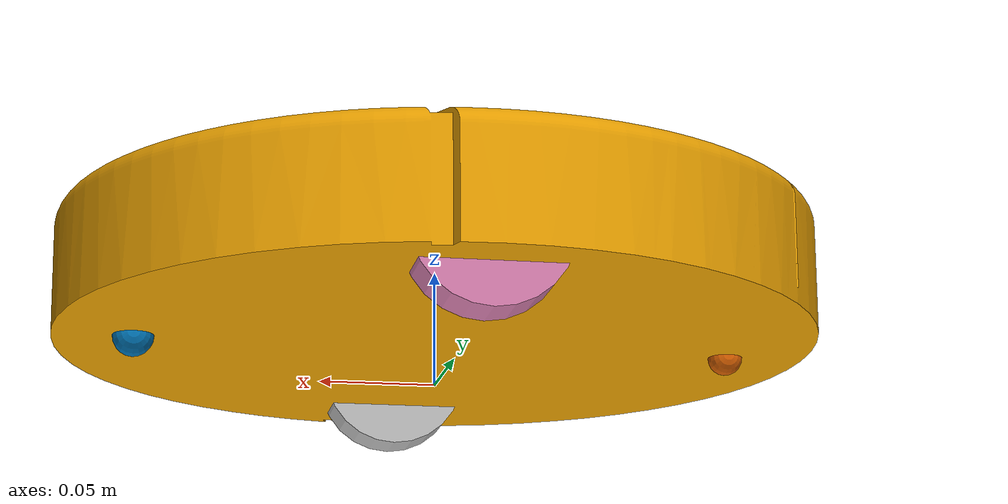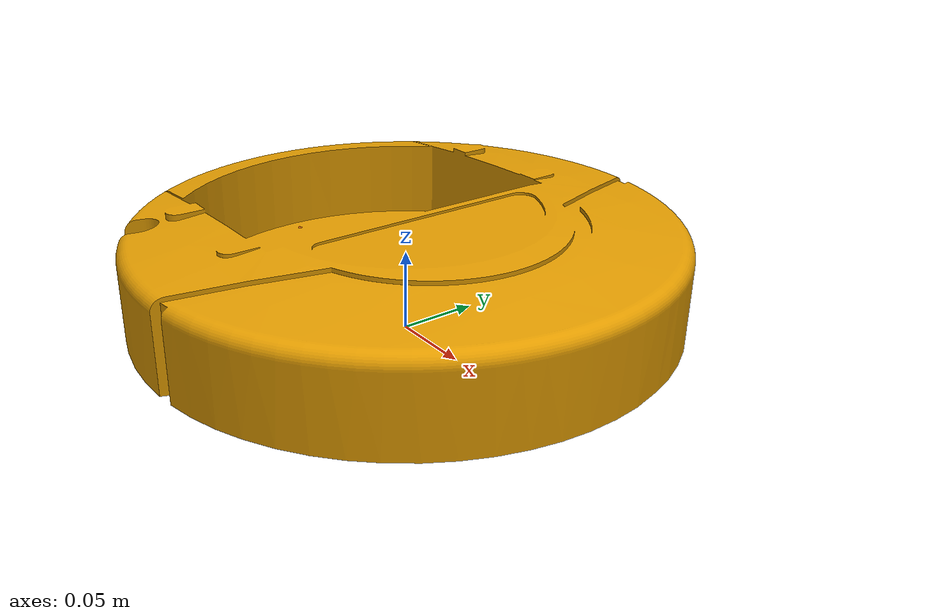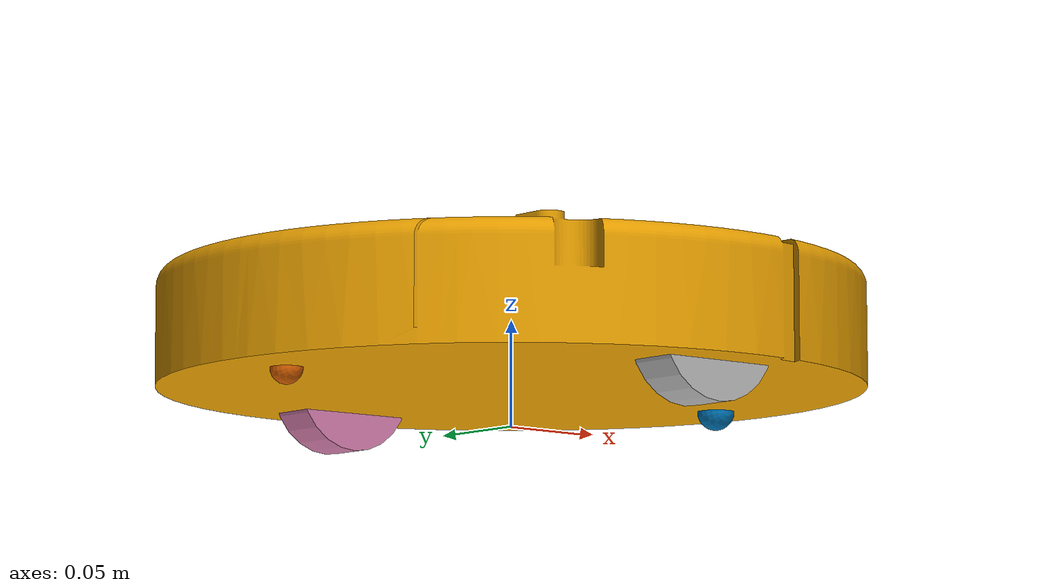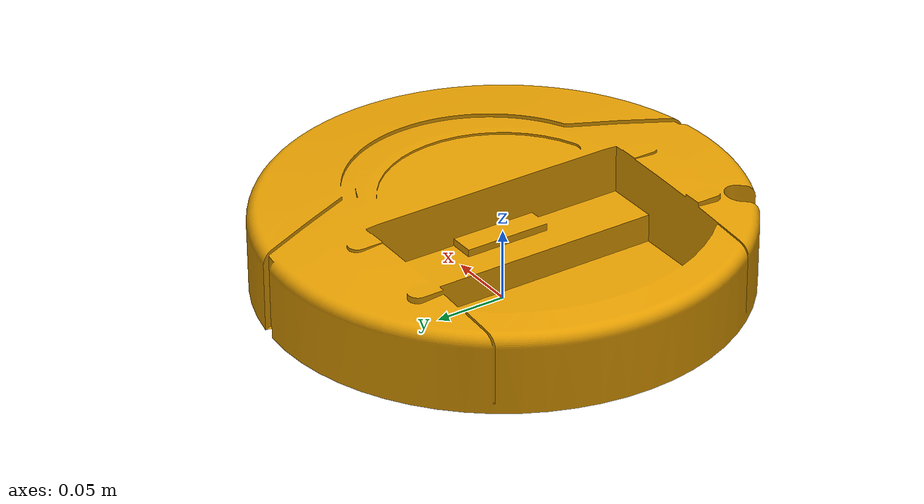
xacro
<?xml version="1.0" ?>
<robot name="vacuum_cleaner"
  xmlns:xacro="http://ros.org/wiki/xacro">

  <xacro:arg name="camera" default="true"/>
  <xacro:arg name="laser" default="false"/>
  <xacro:arg name="namespace" default="vacuum_cleaner"/>
  <xacro:property name="namespace" value="$(arg namespace)"/>

  <xacro:include filename="$(find custom_robots)/models/vacuum_cleaner/vacuum_cleaner_gz.urdf.xacro"/>
  <xacro:include filename="$(find custom_robots)/models/vacuum_cleaner/vacuum_cleaner_common.urdf.xacro"/>

  <xacro:vacuum_cleaner namespace="${namespace}"/>

  <xacro:if value="$(arg camera)">
    <xacro:camera xyz="0 0 0" rpy="0 -1.57 0" name="camera" parent="base" namespace="${namespace}"/>
  </xacro:if>

  <xacro:if value="$(arg laser)">
    <xacro:laser xyz="0.139 0 0.0752" rpy="0 0 0" name="laser" parent="base" namespace="${namespace}"/>
  </xacro:if>
</robot>

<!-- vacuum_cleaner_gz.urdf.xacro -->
<robot name="vacuum_cleaner_gz"
  xmlns:xacro="http://ros.org/wiki/xacro">
  <xacro:macro name="camera" params="xyz rpy name parent namespace">

    <link name="${name}_link"></link>

    <joint name="${name}_to_${parent}" type="fixed">
      <parent link="${parent}" />
      <child link="${name}_link" />
      <origin xyz="${xyz}" rpy="${rpy}" />
    </joint>

    <gazebo reference="${name}_link">
      <sensor name="${name}" type="camera">
        <always_on>true</always_on>
        <visualize>false</visualize>
        <update_rate>20</update_rate>
        <topic>/${namespace}/${name}/image_raw</topic>
        <camera name="camera">
          <camera_info_topic>/${namespace}/${name}/camera_info</camera_info_topic>
          <horizontal_fov>1.089</horizontal_fov>
          <distortion>
            <k1>0.0</k1>
            <k2>0.0</k2>
            <k3>0.0</k3>
            <p1>0.0</p1>
            <p2>0.0</p2>
            <center>0.5 0.5</center>
          </distortion>
          <image>
            <width>640</width>
            <height>480</height>
            <format>R8G8B8</format>
          </image>
          <clip>
            <near>0.05</near>
            <far>8.0</far>
          </clip>
          <noise>
            <type>gaussian</type>
            <mean>0.0</mean>
            <stddev>0.007</stddev>
          </noise>
        </camera>
      </sensor>
    </gazebo>
  </xacro:macro>

  <xacro:macro name="laser" params="xyz rpy name parent namespace">
    <link name="${name}_link">
      <visual>
        <geometry>
          <mesh filename="file://$(find custom_robots)/models/f1/meshes/hokuyo.dae"
            scale="0.1 0.1 0.1" />
        </geometry>
      </visual>
    </link>

    <joint name="${name}_to_${parent}" type="fixed">
      <parent link="${parent}" />
      <child link="${name}_link" />
      <origin xyz="${xyz}" rpy="${rpy}" />
    </joint>

    <gazebo reference="${name}_link">
      <sensor name="${name}" type="gpu_lidar">
        <always_on>1</always_on>
        <visualize>1</visualize>
        <update_rate>20</update_rate>
        <topic>/${namespace}/laser/scan</topic>
        <gz_frame_id>laser</gz_frame_id>
        <lidar>
          <scan>
            <horizontal>
              <samples>180</samples>
              <resolution>1</resolution>
              <min_angle>-1.570000</min_angle>
              <max_angle>1.570000</max_angle>
            </horizontal>
          </scan>
          <range>
            <min>0.08</min>
            <max>10</max>
            <resolution>0.01</resolution>
          </range>
        </lidar>
      </sensor>
    </gazebo>
  </xacro:macro>

  <xacro:macro name="bumper" params="topic name namespace">
    <gazebo reference="${name}">
      <mu1>0.1</mu1>
      <mu2>0.1</mu2>
      <maxVel>0.01</maxVel>
      <minDepth>0.001</minDepth>
      <maxContacts>10</maxContacts>
      <material>Gazebo/DarkGrey</material>
      <sensor name='${name}_contact_sensor' type='contact'>
        <always_on>true</always_on>
        <update_rate>100</update_rate>
        <visualize>true</visualize>
        <contact>
          <collision>${name}_collision</collision>
          <topic>/${namespace}/${topic}</topic>
        </contact>
      </sensor>

    </gazebo>

  </xacro:macro>

  <xacro:macro name="velocity" params="namespace">
    <gazebo>
      <plugin filename="gz-sim-velocity-control-system" name="gz::sim::systems::VelocityControl">
        <topic>/${namespace}/cmd_vel</topic>
      </plugin>
    </gazebo>
  </xacro:macro>

  <xacro:macro name="odom" params="freq namespace">
    <gazebo>
      <plugin filename="gz-sim-odometry-publisher-system" name="gz::sim::systems::OdometryPublisher">
        <odom_frame>odom</odom_frame>
        <robot_base_frame>base</robot_base_frame>
        <odom_publish_frequency>${freq}</odom_publish_frequency>
        <odom_topic>/${namespace}/odom</odom_topic>
        <dimensions>3</dimensions>
      </plugin>
    </gazebo>
  </xacro:macro>

  <xacro:macro name="noise_odom" params="namespace">
    <gazebo>
      <plugin filename="libNoisyOdometryPlugin.so" name="custom_plugins::NoisyOdometryPlugin">
        <ros_topic>/${namespace}/odom_noisy</ros_topic>
        <frame_id>odom</frame_id>
        <child_frame_id>base</child_frame_id>

        <!-- must match the DiffDrive plugin values above -->
        <left_joint>left_wheel_joint</left_joint>
        <right_joint>right_wheel_joint</right_joint>
        <wheel_radius>0.033</wheel_radius>
        <wheel_separation>0.287</wheel_separation>

        <alpha1>0.01</alpha1>
        <alpha2>0.01</alpha2>
        <alpha3>0.005</alpha3>
        <alpha4>0.005</alpha4>
      </plugin>
    </gazebo>
  </xacro:macro>
</robot>

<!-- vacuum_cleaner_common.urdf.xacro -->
<robot xmlns:xacro="http://ros.org/wiki/xacro">
  <xacro:include filename="$(find custom_robots)/models/vacuum_cleaner/vacuum_cleaner_gz.urdf.xacro"/>

  <xacro:macro name="vacuum_cleaner" params="namespace">
    <gazebo>
      <plugin name="gz::sim::systems::Contact" filename="gz-sim-contact-system"></plugin>
    </gazebo>

    <link name="base">
      <inertial>
        <origin rpy="0 0 0" xyz="0 0 0"/>
        <mass value="1"/>
        <inertia ixx="1" ixy="0" ixz="0" iyy="1" iyz="0" izz="1"/>
      </inertial>
      <collision>
        <origin rpy="0 0 0" xyz="0 0 0.047800 "/>
        <geometry>
          <mesh filename="$(find custom_robots)/models/vacuum_cleaner/meshes/create_body.dae"/>
        </geometry>
      </collision>
      <visual>
        <origin rpy="0 0 0" xyz="0 0 0.047800 "/>
        <geometry>
          <mesh filename="$(find custom_robots)/models/vacuum_cleaner/meshes/create_body.dae"/>
        </geometry>
      </visual>
    </link>

    <joint name="right_bumper_joint" type="fixed">
      <origin rpy="0 0 0" xyz="-0.01 0 0.03"/>
      <parent link="base"/>
      <child link="right_bumper"/>
    </joint>

    <link name="right_bumper">
      <collision>
        <geometry>
          <mesh filename="$(find custom_robots)/models/vacuum_cleaner/meshes/right_bumper.dae"/>
        </geometry>
      </collision>
    </link>
    <xacro:bumper topic="events/right_bumper" name="right_bumper" namespace="${namespace}"/>

    <joint name="center_bumper_joint" type="fixed">
      <origin rpy="0 0 0" xyz="-0.01 0 0.03"/>
      <parent link="base"/>
      <child link="center_bumper"/>
    </joint>

    <link name="center_bumper">
      <collision>
        <geometry>
          <mesh filename="$(find custom_robots)/models/vacuum_cleaner/meshes/center_bumper.dae"/>
        </geometry>
      </collision>
    </link>
    <xacro:bumper topic="events/center_bumper" name="center_bumper" namespace="${namespace}"/>

    <joint name="left_bumper_joint" type="fixed">
      <origin rpy="0 0 0" xyz="-0.01 0 0.03"/>
      <parent link="base"/>
      <child link="left_bumper"/>
    </joint>

    <link name="left_bumper">
      <collision>
        <geometry>
          <mesh filename="$(find custom_robots)/models/vacuum_cleaner/meshes/left_bumper.dae"/>
        </geometry>
      </collision>
    </link>
    <xacro:bumper topic="events/left_bumper" name="left_bumper" namespace="${namespace}"/>

    <joint name="front_wheel_joint" type="fixed">
      <origin rpy="0 1.570700 1.570700" xyz="0.13 0 0.017"/>
      <parent link="base"/>
      <child link="front_wheel_link"/>
    </joint>

    <link name="front_wheel_link">
      <collision>
        <origin rpy="0 0 0" xyz="0 0 0"/>
        <geometry>
          <sphere radius="0.018"/>
        </geometry>
      </collision>
      <visual>
        <origin rpy="0 0 0" xyz="0 0 0"/>
        <geometry>
          <sphere radius="0.009"/>
        </geometry>
      </visual>
    </link>

    <joint name="rear_wheel_joint" type="fixed">
      <origin rpy="0 1.570700 1.570700" xyz="-0.13 0 0.017"/>
      <parent link="base"/>
      <child link="rear_wheel_link"/>
    </joint>

    <link name="rear_wheel_link">
      <collision>
        <origin rpy="0 0 0" xyz="0 0 0"/>
        <geometry>
          <sphere radius="0.015"/>
        </geometry>
      </collision>
      <visual>
        <origin rpy="0 0 0" xyz="0 0 0"/>
        <geometry>
          <sphere radius="0.0075"/>
        </geometry>
      </visual>
    </link>

    <joint name="left_wheel_joint" type="continuous">
      <origin rpy="0 0 0" xyz="0 0.13 0.032"/>
      <parent link="base"/>
      <child link="left_wheel_link"/>
      <axis xyz="0 1 0"/>
      <limit effort="1000" velocity="100"/>
    </joint>

    <link name="left_wheel_link">
      <inertial>
        <origin rpy="0 0 0" xyz="0 0 0"/>
        <mass value="0.01"/>
        <inertia ixx="0.001" ixy="0" ixz="0" iyy="0.001" iyz="0" izz="0.001"/>
      </inertial>
      <collision>
        <origin rpy="0 1.570700 1.570700" xyz="0 0 0"/>
        <geometry>
          <cylinder radius="0.033" length="0.023"/>
        </geometry>
      </collision>
      <visual>
        <origin rpy="0 1.570700 1.570700" xyz="0 0 0"/>
        <geometry>
          <cylinder radius="0.033" length="0.023"/>
        </geometry>
      </visual>
    </link>

    <joint name="right_wheel_joint" type="continuous">
      <origin rpy="0 0 0" xyz="0 -0.13 0.032"/>
      <parent link="base"/>
      <child link="right_wheel_link"/>
      <axis xyz="0 1 0"/>
      <limit effort="1000" velocity="100"/>
    </joint>

    <link name="right_wheel_link">
      <inertial>
        <origin rpy="0 0 0" xyz="0 0 0"/>
        <mass value="0.01"/>
        <inertia ixx="0.001" ixy="0" ixz="0" iyy="0.001" iyz="0" izz="0.001"/>
      </inertial>
      <collision>
        <origin rpy="0 1.570700 1.570700" xyz="0 0 0"/>
        <geometry>
          <cylinder radius="0.033" length="0.023"/>
        </geometry>
      </collision>
      <visual>
        <origin rpy="0 1.570700 1.570700" xyz="0 0 0"/>
        <geometry>
          <cylinder radius="0.033" length="0.023"/>
        </geometry>
      </visual>
    </link>

    <xacro:velocity namespace="${namespace}"/>
    <xacro:odom freq="20" namespace="${namespace}"/>
    <xacro:noise_odom namespace="${namespace}"/>
  </xacro:macro>
</robot>
